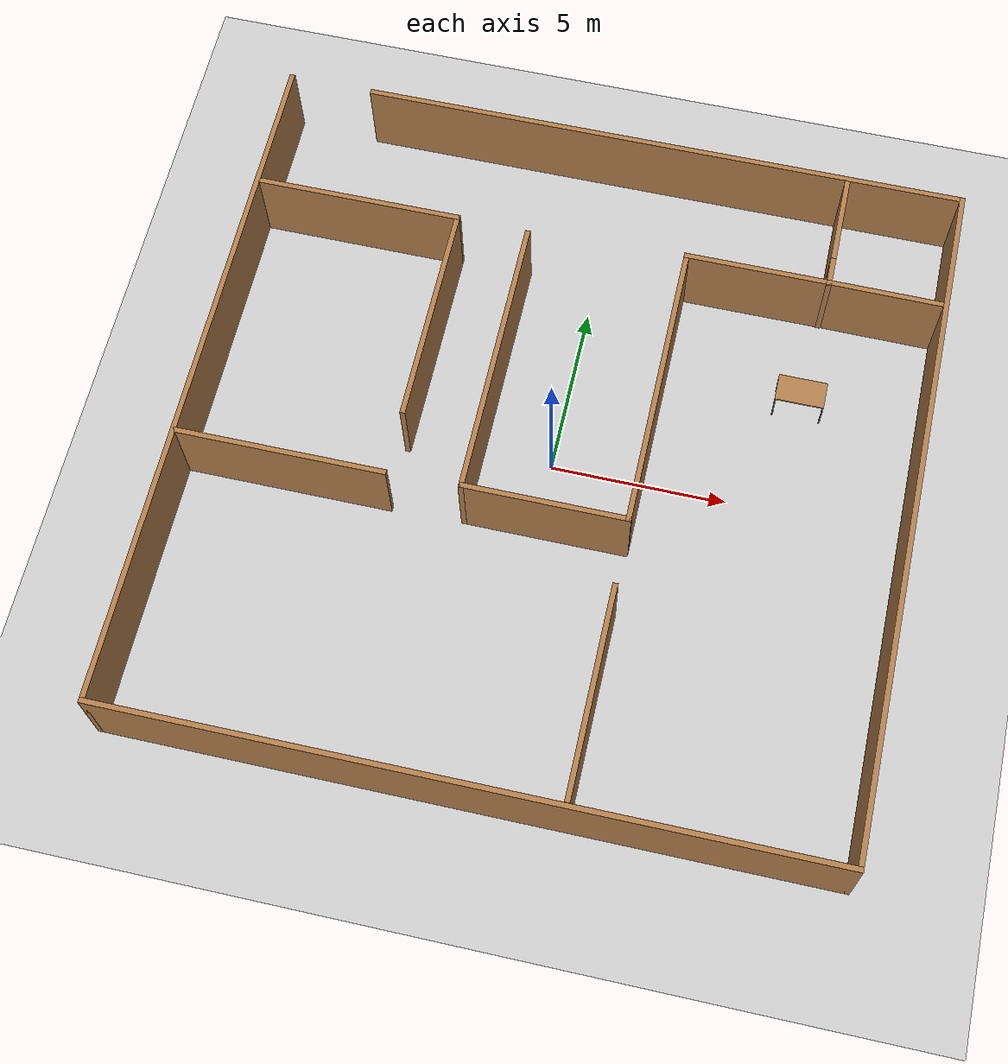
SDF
<sdf version="1.6">
 <world name="default">
  <light name="sun" type="directional">
   <pose>0 0 10 0 -0 0</pose>
   <diffuse>0.8 0.8 0.8 1</diffuse>
   <specular>0.1 0.1 0.1 1</specular>
   <attenuation>
    <range>1000</range>
    <constant>0.9</constant>
    <linear>0.01</linear>
    <quadratic>0.001</quadratic>
   </attenuation>
   <direction>-0.5 0.5 -1</direction>
  </light>
  <model name="ground_plane">
   <static>1</static>
   <link name="link">
    <collision name="collision">
     <geometry><plane><normal>0 0 1</normal><size>100 100</size></plane></geometry>
     <surface><friction><ode><mu>100</mu><mu2>50</mu2></ode></friction></surface>
    </collision>
    <visual name="visual">
     <cast_shadows>0</cast_shadows>
     <geometry><plane><normal>0 0 1</normal><size>100 100</size></plane></geometry>
     <material>
      <script><uri>file://media/materials/scripts/gazebo.material</uri><name>Gazebo/Grey</name></script>
     </material>
    </visual>
   </link>
  </model>
  <gravity>0 0 -9.8</gravity>
  <magnetic_field>6e-06 2.3e-05 -4.2e-05</magnetic_field>
  <atmosphere type="adiabatic"/>
  <physics name="default_physics" default="0" type="ode">
   <max_step_size>0.001</max_step_size>
   <real_time_factor>1</real_time_factor>
   <real_time_update_rate>1000</real_time_update_rate>
  </physics>
  <scene><ambient>0.4 0.4 0.4 1</ambient><background>0.7 0.7 0.7 1</background><shadows>1</shadows></scene>
  <spherical_coordinates>
   <surface_model>EARTH_WGS84</surface_model>
   <latitude_deg>0</latitude_deg>
   <longitude_deg>0</longitude_deg>
   <elevation>0</elevation>
   <heading_deg>0</heading_deg>
  </spherical_coordinates>
  <model name="home">
   <pose>-0.053692 -0.156938 0 0 -0 0</pose>
   <link name="Wall_13">
    <pose>6.71492 8.12671 0 0 0 -1.57048</pose>
    <visual name="Wall_13_Visual_0">
     <pose>-0.450727 0 1.25 0 -0 0</pose>
     <geometry><box><size>2.78187 0.15 2.5</size></box></geometry>
     <material>
      <script><uri>file://media/materials/scripts/gazebo.material</uri><name>Gazebo/Wood</name></script>
      <ambient>1 1 1 1</ambient>
     </material>
    </visual>
    <collision name="Wall_13_Collision_0">
     <geometry><box><size>2.78187 0.15 2.5</size></box></geometry>
     <pose>-0.450727 0 1.25 0 -0 0</pose>
    </collision>
    <visual name="Wall_13_Visual_1">
     <pose>1.84093 0 1.25 0 -0 0</pose>
     <geometry><box><size>0.001453 0.15 2.5</size></box></geometry>
     <material>
      <script><uri>file://media/materials/scripts/gazebo.material</uri><name>Gazebo/Wood</name></script>
      <ambient>1 1 1 1</ambient>
     </material>
    </visual>
    <collision name="Wall_13_Collision_1">
     <geometry><box><size>0.001453 0.15 2.5</size></box></geometry>
     <pose>1.84093 0 1.25 0 -0 0</pose>
    </collision>
    <visual name="Wall_13_Visual_2">
     <pose>1.39021 0 2.25 0 -0 0</pose>
     <geometry><box><size>0.9 0.15 0.5</size></box></geometry>
     <material>
      <script><uri>file://media/materials/scripts/gazebo.material</uri><name>Gazebo/Wood</name></script>
      <ambient>1 1 1 1</ambient>
     </material>
    </visual>
    <collision name="Wall_13_Collision_2">
     <geometry><box><size>0.9 0.15 0.5</size></box></geometry>
     <pose>1.39021 0 2.25 0 -0 0</pose>
    </collision>
   </link>
   <link name="Wall_14">
    <collision name="Wall_14_Collision">
     <geometry><box><size>3.45983 0.15 2.5</size></box></geometry>
     <pose>0 0 1.25 0 -0 0</pose>
    </collision>
    <visual name="Wall_14_Visual">
     <pose>0 0 1.25 0 -0 0</pose>
     <geometry><box><size>3.45983 0.15 2.5</size></box></geometry>
     <material>
      <script><uri>file://media/materials/scripts/gazebo.material</uri><name>Gazebo/Wood</name></script>
      <ambient>1 1 1 1</ambient>
     </material>
    </visual>
    <pose>8.37036 6.3701 0 0 0 -0.006077</pose>
   </link>
   <link name="Wall_16">
    <collision name="Wall_16_Collision">
     <geometry><box><size>4.25 0.15 2.5</size></box></geometry>
     <pose>0 0 1.25 0 -0 0</pose>
    </collision>
    <visual name="Wall_16_Visual">
     <pose>0 0 1.25 0 -0 0</pose>
     <geometry><box><size>4.25 0.15 2.5</size></box></geometry>
     <material>
      <script><uri>file://media/materials/scripts/gazebo.material</uri><name>Gazebo/Wood</name></script>
      <ambient>1 1 1 1</ambient>
     </material>
    </visual>
    <pose>4.66547 6.38016 0 0 -0 3.14159</pose>
   </link>
   <link name="Wall_17">
    <collision name="Wall_17_Collision">
     <geometry><box><size>8.5 0.15 2.5</size></box></geometry>
     <pose>0 0 1.25 0 -0 0</pose>
    </collision>
    <visual name="Wall_17_Visual">
     <pose>0 0 1.25 0 -0 0</pose>
     <geometry><box><size>8.5 0.15 2.5</size></box></geometry>
     <material>
      <script><uri>file://media/materials/scripts/gazebo.material</uri><name>Gazebo/Wood</name></script>
      <ambient>1 1 1 1</ambient>
     </material>
    </visual>
    <pose>2.61547 2.20516 0 0 0 -1.5708</pose>
   </link>
   <link name="Wall_20">
    <collision name="Wall_20_Collision">
     <geometry><box><size>6 0.15 2.5</size></box></geometry>
     <pose>0 0 1.25 0 -0 0</pose>
    </collision>
    <visual name="Wall_20_Visual">
     <pose>0 0 1.25 0 -0 0</pose>
     <geometry><box><size>6 0.15 2.5</size></box></geometry>
     <material>
      <script><uri>file://media/materials/scripts/gazebo.material</uri><name>Gazebo/Wood</name></script>
      <ambient>1 1 1 1</ambient>
     </material>
    </visual>
    <pose>2.64095 -6.8416 0 0 -0 1.5708</pose>
   </link>
   <link name="Wall_22">
    <collision name="Wall_22_Collision">
     <geometry><box><size>4.75 0.15 2.5</size></box></geometry>
     <pose>0 0 1.25 0 -0 0</pose>
    </collision>
    <visual name="Wall_22_Visual">
     <pose>0 0 1.25 0 -0 0</pose>
     <geometry><box><size>4.75 0.15 2.5</size></box></geometry>
     <material>
      <script><uri>file://media/materials/scripts/gazebo.material</uri><name>Gazebo/Wood</name></script>
      <ambient>1 1 1 1</ambient>
     </material>
    </visual>
    <pose>0.315469 -1.96984 0 0 -0 3.14159</pose>
   </link>
   <link name="Wall_23">
    <collision name="Wall_23_Collision">
     <geometry><box><size>8.25 0.15 2.5</size></box></geometry>
     <pose>0 0 1.25 0 -0 0</pose>
    </collision>
    <visual name="Wall_23_Visual">
     <pose>0 0 1.25 0 -0 0</pose>
     <geometry><box><size>8.25 0.15 2.5</size></box></geometry>
     <material>
      <script><uri>file://media/materials/scripts/gazebo.material</uri><name>Gazebo/Wood</name></script>
      <ambient>1 1 1 1</ambient>
     </material>
    </visual>
    <pose>-1.98453 2.08016 0 0 -0 1.5708</pose>
   </link>
   <link name="Wall_25">
    <collision name="Wall_25_Collision">
     <geometry><box><size>6 0.15 2.5</size></box></geometry>
     <pose>0 0 1.25 0 -0 0</pose>
    </collision>
    <visual name="Wall_25_Visual">
     <pose>0 0 1.25 0 -0 0</pose>
     <geometry><box><size>6 0.15 2.5</size></box></geometry>
     <material>
      <script><uri>file://media/materials/scripts/gazebo.material</uri><name>Gazebo/Wood</name></script>
      <ambient>1 1 1 1</ambient>
     </material>
    </visual>
    <pose>-7.04784 -2.0458 0 0 -0 0</pose>
   </link>
   <link name="Wall_27">
    <collision name="Wall_27_Collision">
     <geometry><box><size>6.5 0.15 2.5</size></box></geometry>
     <pose>0 0 1.25 0 -0 0</pose>
    </collision>
    <visual name="Wall_27_Visual">
     <pose>0 0 1.25 0 -0 0</pose>
     <geometry><box><size>6.5 0.15 2.5</size></box></geometry>
     <material>
      <script><uri>file://media/materials/scripts/gazebo.material</uri><name>Gazebo/Wood</name></script>
      <ambient>1 1 1 1</ambient>
     </material>
    </visual>
    <pose>-4.06616 3.03656 0 0 -0 1.5708</pose>
   </link>
   <link name="Wall_28">
    <collision name="Wall_28_Collision">
     <geometry><box><size>6 0.15 2.5</size></box></geometry>
     <pose>0 0 1.25 0 -0 0</pose>
    </collision>
    <visual name="Wall_28_Visual">
     <pose>0 0 1.25 0 -0 0</pose>
     <geometry><box><size>6 0.15 2.5</size></box></geometry>
     <material>
      <script><uri>file://media/materials/scripts/gazebo.material</uri><name>Gazebo/Wood</name></script>
      <ambient>1 1 1 1</ambient>
     </material>
    </visual>
    <pose>-6.99116 6.21156 0 0 -0 3.14159</pose>
   </link>
   <link name="Wall_30">
    <collision name="Wall_30_Collision">
     <geometry><box><size>17.75 0.15 2.5</size></box></geometry>
     <pose>0 0 1.25 0 -0 0</pose>
    </collision>
    <visual name="Wall_30_Visual">
     <pose>0 0 1.25 0 -0 0</pose>
     <geometry><box><size>17.75 0.15 2.5</size></box></geometry>
     <material>
      <script><uri>file://media/materials/scripts/gazebo.material</uri><name>Gazebo/Wood</name></script>
      <ambient>1 1 1 1</ambient>
     </material>
    </visual>
    <pose>1.25 9.925 0 0 -0 3.14159</pose>
   </link>
   <link name="Wall_6">
    <collision name="Wall_6_Collision">
     <geometry><box><size>20.25 0.15 2.5</size></box></geometry>
     <pose>0 0 1.25 0 -0 0</pose>
    </collision>
    <visual name="Wall_6_Visual">
     <pose>0 0 1.25 0 -0 0</pose>
     <geometry><box><size>20.25 0.15 2.5</size></box></geometry>
     <material>
      <script><uri>file://media/materials/scripts/gazebo.material</uri><name>Gazebo/Wood</name></script>
      <ambient>1 1 1 1</ambient>
     </material>
    </visual>
    <pose>0 -9.925 0 0 -0 0</pose>
   </link>
   <link name="Wall_7">
    <collision name="Wall_7_Collision">
     <geometry><box><size>20 0.15 2.5</size></box></geometry>
     <pose>0 0 1.25 0 -0 0</pose>
    </collision>
    <visual name="Wall_7_Visual">
     <pose>0 0 1.25 0 -0 0</pose>
     <geometry><box><size>20 0.15 2.5</size></box></geometry>
     <material>
      <script><uri>file://media/materials/scripts/gazebo.material</uri><name>Gazebo/Wood</name></script>
      <ambient>1 1 1 1</ambient>
     </material>
    </visual>
    <pose>10.05 0 0 0 -0 1.5708</pose>
   </link>
   <link name="Wall_9">
    <collision name="Wall_9_Collision">
     <geometry><box><size>20 0.15 2.5</size></box></geometry>
     <pose>0 0 1.25 0 -0 0</pose>
    </collision>
    <visual name="Wall_9_Visual">
     <pose>0 0 1.25 0 -0 0</pose>
     <geometry><box><size>20 0.15 2.5</size></box></geometry>
     <material>
      <script><uri>file://media/materials/scripts/gazebo.material</uri><name>Gazebo/Wood</name></script>
      <ambient>1 1 1 1</ambient>
     </material>
    </visual>
    <pose>-10.05 0 0 0 0 -1.5708</pose>
   </link>
   <static>1</static>
  </model>
  <model name="table">
   <static>0</static>
   <link name="link">
    <collision name="surface">
     <pose>0 0 1 0 -0 0</pose>
     <geometry><box><size>1.5 0.8 0.03</size></box></geometry>
     <surface><friction><ode><mu>0.6</mu><mu2>0.6</mu2></ode></friction></surface>
    </collision>
    <visual name="visual1">
     <pose>0 0 1 0 -0 0</pose>
     <geometry><box><size>1.4 0.8 0.04</size></box></geometry>
     <material>
      <script><uri>file://media/materials/scripts/gazebo.material</uri><name>Gazebo/Wood</name></script>
     </material>
    </visual>
    <collision name="front_left_leg">
     <pose>0.68 0.38 0.5 0 -0 0</pose>
     <geometry><cylinder><radius>0.02</radius><length>1</length></cylinder></geometry>
    </collision>
    <visual name="front_left_leg">
     <pose>0.68 0.38 0.5 0 -0 0</pose>
     <geometry><cylinder><radius>0.02</radius><length>1</length></cylinder></geometry>
     <material>
      <script><uri>file://media/materials/scripts/gazebo.material</uri><name>Gazebo/Grey</name></script>
     </material>
    </visual>
    <collision name="front_right_leg">
     <pose>0.68 -0.38 0.5 0 -0 0</pose>
     <geometry><cylinder><radius>0.02</radius><length>1</length></cylinder></geometry>
    </collision>
    <visual name="front_right_leg">
     <pose>0.68 -0.38 0.5 0 -0 0</pose>
     <geometry><cylinder><radius>0.02</radius><length>1</length></cylinder></geometry>
     <material>
      <script><uri>file://media/materials/scripts/gazebo.material</uri><name>Gazebo/Grey</name></script>
     </material>
    </visual>
    <collision name="back_right_leg">
     <pose>-0.68 -0.38 0.5 0 -0 0</pose>
     <geometry><cylinder><radius>0.02</radius><length>1</length></cylinder></geometry>
    </collision>
    <visual name="back_right_leg">
     <pose>-0.68 -0.38 0.5 0 -0 0</pose>
     <geometry><cylinder><radius>0.02</radius><length>1</length></cylinder></geometry>
     <material>
      <script><uri>file://media/materials/scripts/gazebo.material</uri><name>Gazebo/Grey</name></script>
     </material>
    </visual>
    <collision name="back_left_leg">
     <pose>-0.68 0.38 0.5 0 -0 0</pose>
     <geometry><cylinder><radius>0.02</radius><length>1</length></cylinder></geometry>
    </collision>
    <visual name="back_left_leg">
     <pose>-0.68 0.38 0.5 0 -0 0</pose>
     <geometry><cylinder><radius>0.02</radius><length>1</length></cylinder></geometry>
     <material>
      <script><uri>file://media/materials/scripts/gazebo.material</uri><name>Gazebo/Grey</name></script>
     </material>
    </visual>
    <inertial>
     <inertia><ixx>1</ixx><ixy>0</ixy><ixz>0</ixz><iyy>1</iyy><iyz>0</iyz><izz>1</izz></inertia>
     <mass>1</mass>
    </inertial>
   </link>
   <pose>6.49885 3.41967 -9e-06 1e-06 -1e-06 0</pose>
  </model>
 </world>
</sdf>
